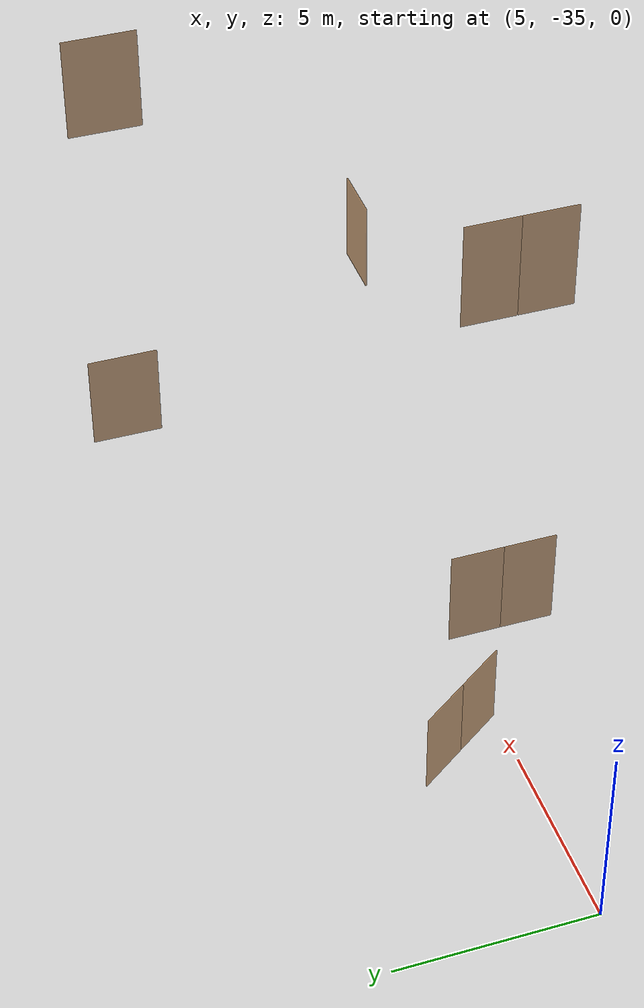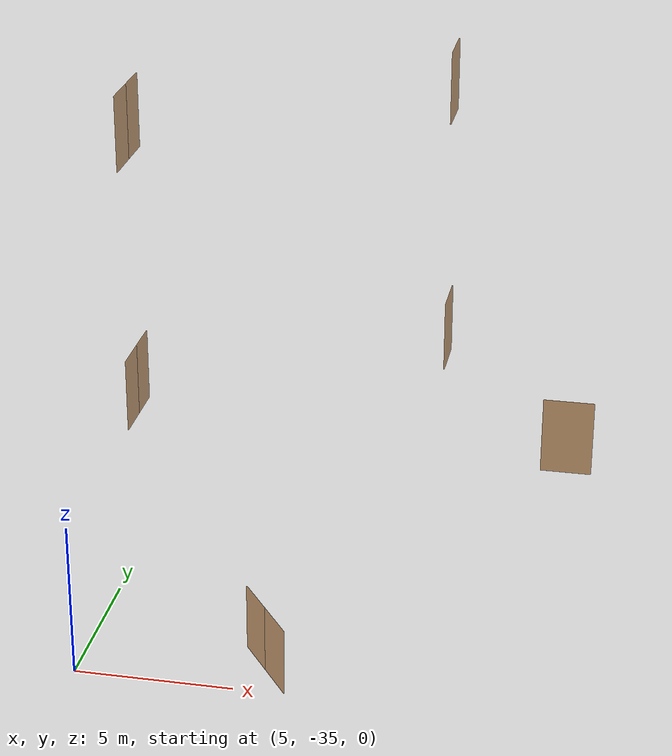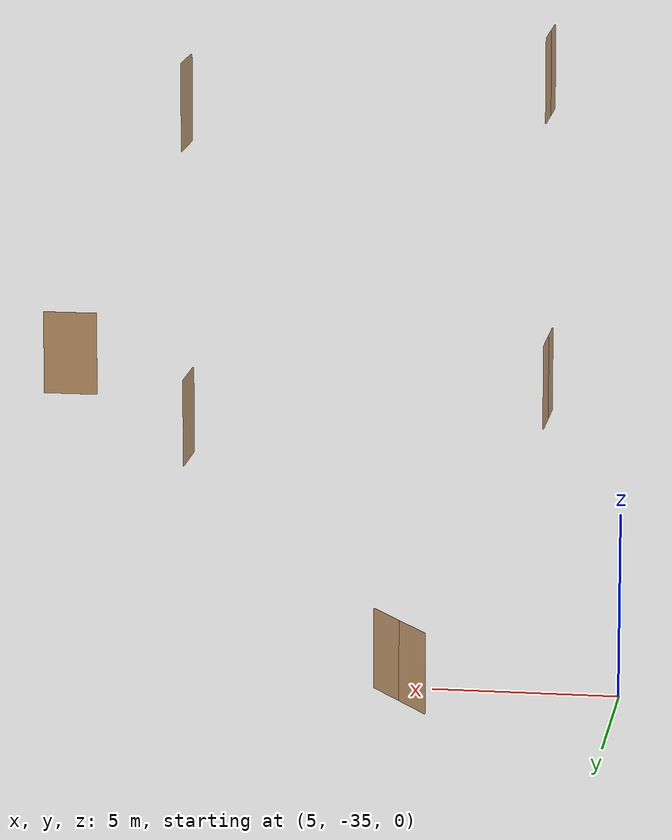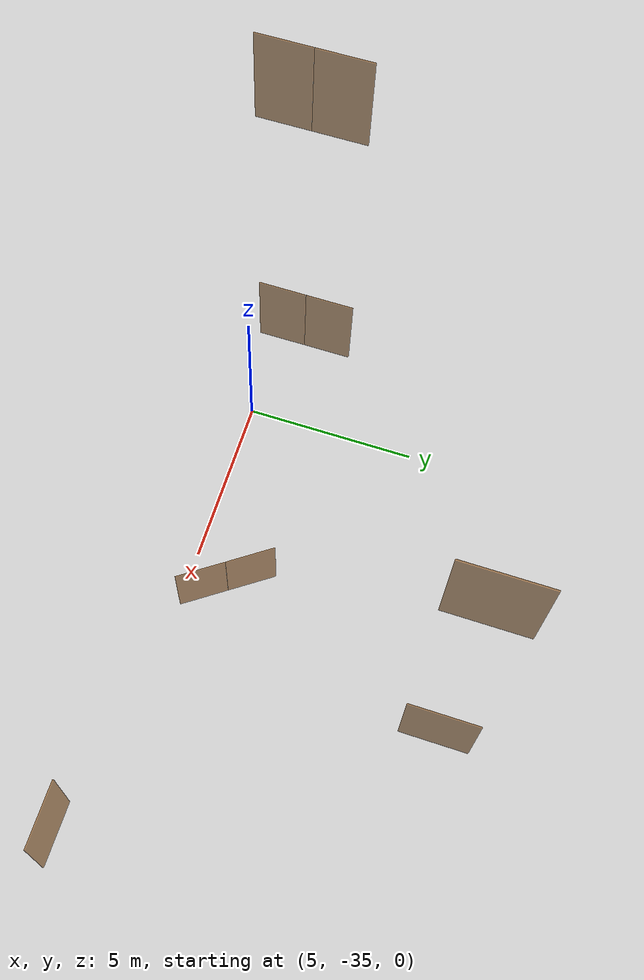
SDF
<sdf version="1.7">
 <world name="sim_world">
  <model name="L1_door1">
   <pose>10.753654762321071 -33.79999264551465 0.0 0 0 2.1904910296829736</pose>
   <link name="right">
    <pose>0.7204413525969184 0 1.11 0 0 0</pose>
    <visual name="right_visual">
     <geometry><box><size>1.4308827051938369 0.03 2.2</size></box></geometry>
     <material>
      <ambient>0.5 0.25 0 0.6</ambient>
      <diffuse>0.5 0.25 0 0.6</diffuse>
      <pbr><metal><metalness>0.0</metalness></metal></pbr>
     </material>
    </visual>
    <collision name="right_collision">
     <geometry><box><size>1.4308827051938369 0.03 2.2</size></box></geometry>
     <surface><contact><collide_bitmask>0x02</collide_bitmask></contact></surface>
    </collision>
    <inertial>
     <mass>50.0</mass>
     <inertia><ixx>20.17041666666667</ixx><iyy>28.69760548342847</iyy><izz>8.534688816761804</izz></inertia>
    </inertial>
   </link>
   <joint name="right_joint" type="revolute">
    <parent>world</parent>
    <child>right</child>
    <axis><xyz>0 0 1</xyz><limit><lower>0</lower><upper>1.57</upper></limit></axis>
    <pose>0.7204413525969184 0 0 0 0 0</pose>
   </joint>
   <link name="left">
    <pose>-0.7204413525969184 0 1.11 0 0 0</pose>
    <visual name="left_visual">
     <geometry><box><size>1.4308827051938369 0.03 2.2</size></box></geometry>
     <material>
      <ambient>0.5 0.25 0 0.6</ambient>
      <diffuse>0.5 0.25 0 0.6</diffuse>
      <pbr><metal><metalness>0.0</metalness></metal></pbr>
     </material>
    </visual>
    <collision name="left_collision">
     <geometry><box><size>1.4308827051938369 0.03 2.2</size></box></geometry>
     <surface><contact><collide_bitmask>0x02</collide_bitmask></contact></surface>
    </collision>
    <inertial>
     <mass>50.0</mass>
     <inertia><ixx>20.17041666666667</ixx><iyy>28.69760548342847</iyy><izz>8.534688816761804</izz></inertia>
    </inertial>
   </link>
   <joint name="left_joint" type="revolute">
    <parent>world</parent>
    <child>left</child>
    <axis><xyz>0 0 1</xyz><limit><lower>-1.57</lower><upper>0</upper></limit></axis>
    <pose>-0.7204413525969184 0 0 0 0 0</pose>
   </joint>
   <plugin name="register_component" filename="libregister_component.so">
    <component name="Door">
     <v_max_door>0.5</v_max_door>
     <a_max_door>0.3</a_max_door>
     <a_nom_door>0.15</a_nom_door>
     <dx_min_door>0.01</dx_min_door>
     <f_max_door>500.0</f_max_door>
     <ros_interface>true</ros_interface>
     <door name="L1_door1" type="DoubleSwingDoor" left_joint_name="left_joint" right_joint_name="right_joint"/>
    </component>
   </plugin>
  </model>
  <model name="L2_door2">
   <pose>6.76857286388343 -32.90682600516501 8.0 0 0 1.571612558028263</pose>
   <link name="right">
    <pose>0.5675078680191911 0 1.11 0 0 0</pose>
    <visual name="right_visual">
     <geometry><box><size>1.1250157360383821 0.03 2.2</size></box></geometry>
     <material>
      <ambient>0.5 0.25 0 0.6</ambient>
      <diffuse>0.5 0.25 0 0.6</diffuse>
      <pbr><metal><metalness>0.0</metalness></metal></pbr>
     </material>
    </visual>
    <collision name="right_collision">
     <geometry><box><size>1.1250157360383821 0.03 2.2</size></box></geometry>
     <surface><contact><collide_bitmask>0x02</collide_bitmask></contact></surface>
    </collision>
    <inertial>
     <mass>50.0</mass>
     <inertia><ixx>20.17041666666667</ixx><iyy>25.44025169305827</iyy><izz>5.277335026391595</izz></inertia>
    </inertial>
   </link>
   <joint name="right_joint" type="revolute">
    <parent>world</parent>
    <child>right</child>
    <axis><xyz>0 0 -1</xyz><limit><lower>0</lower><upper>1.57</upper></limit></axis>
    <pose>0.5675078680191911 0 0 0 0 0</pose>
   </joint>
   <link name="left">
    <pose>-0.5675078680191911 0 1.11 0 0 0</pose>
    <visual name="left_visual">
     <geometry><box><size>1.1250157360383821 0.03 2.2</size></box></geometry>
     <material>
      <ambient>0.5 0.25 0 0.6</ambient>
      <diffuse>0.5 0.25 0 0.6</diffuse>
      <pbr><metal><metalness>0.0</metalness></metal></pbr>
     </material>
    </visual>
    <collision name="left_collision">
     <geometry><box><size>1.1250157360383821 0.03 2.2</size></box></geometry>
     <surface><contact><collide_bitmask>0x02</collide_bitmask></contact></surface>
    </collision>
    <inertial>
     <mass>50.0</mass>
     <inertia><ixx>20.17041666666667</ixx><iyy>25.44025169305827</iyy><izz>5.277335026391595</izz></inertia>
    </inertial>
   </link>
   <joint name="left_joint" type="revolute">
    <parent>world</parent>
    <child>left</child>
    <axis><xyz>0 0 -1</xyz><limit><lower>-1.57</lower><upper>0</upper></limit></axis>
    <pose>-0.5675078680191911 0 0 0 0 0</pose>
   </joint>
   <plugin name="register_component" filename="libregister_component.so">
    <component name="Door">
     <v_max_door>0.5</v_max_door>
     <a_max_door>0.3</a_max_door>
     <a_nom_door>0.15</a_nom_door>
     <dx_min_door>0.01</dx_min_door>
     <f_max_door>500.0</f_max_door>
     <ros_interface>true</ros_interface>
     <door name="L2_door2" type="DoubleSwingDoor" left_joint_name="left_joint" right_joint_name="right_joint"/>
    </component>
   </plugin>
  </model>
  <model name="L2_door5">
   <pose>19.62055855578882 -34.21478433126707 8.0 0 0 3.1365461417546308</pose>
   <link name="right">
    <pose>0 0 1.11 0 0 0</pose>
    <visual name="right_visual">
     <geometry><box><size>1.4278667928054123 0.03 2.2</size></box></geometry>
     <material>
      <ambient>0.5 0.25 0 0.6</ambient>
      <diffuse>0.5 0.25 0 0.6</diffuse>
      <pbr><metal><metalness>0.0</metalness></metal></pbr>
     </material>
    </visual>
    <collision name="right_collision">
     <geometry><box><size>1.4278667928054123 0.03 2.2</size></box></geometry>
     <surface><contact><collide_bitmask>0x02</collide_bitmask></contact></surface>
    </collision>
    <inertial>
     <mass>50.0</mass>
     <inertia><ixx>20.17041666666667</ixx><iyy>28.661681574985064</iyy><izz>8.498764908318392</izz></inertia>
    </inertial>
   </link>
   <joint name="right_joint" type="revolute">
    <parent>world</parent>
    <child>right</child>
    <axis><xyz>0 0 -1</xyz><limit><lower>0</lower><upper>1.57</upper></limit></axis>
    <pose>0.7189333964027061 0 0 0 0 0</pose>
   </joint>
   <plugin name="register_component" filename="libregister_component.so">
    <component name="Door">
     <v_max_door>0.5</v_max_door>
     <a_max_door>0.3</a_max_door>
     <a_nom_door>0.15</a_nom_door>
     <dx_min_door>0.01</dx_min_door>
     <f_max_door>500.0</f_max_door>
     <ros_interface>true</ros_interface>
     <door name="L2_door5" type="SwingDoor" left_joint_name="empty_joint" right_joint_name="right_joint"/>
    </component>
   </plugin>
  </model>
  <model name="L2_door12">
   <pose>15.28470442617677 -27.2761317707633 8.0 0 0 1.571612558028262</pose>
   <link name="right">
    <pose>0 0 1.11 0 0 0</pose>
    <visual name="right_visual">
     <geometry><box><size>1.5658659299508506 0.03 2.2</size></box></geometry>
     <material>
      <ambient>0.5 0.25 0 0.6</ambient>
      <diffuse>0.5 0.25 0 0.6</diffuse>
      <pbr><metal><metalness>0.0</metalness></metal></pbr>
     </material>
    </visual>
    <collision name="right_collision">
     <geometry><box><size>1.5658659299508506 0.03 2.2</size></box></geometry>
     <surface><contact><collide_bitmask>0x02</collide_bitmask></contact></surface>
    </collision>
    <inertial>
     <mass>50.0</mass>
     <inertia><ixx>20.17041666666667</ixx><iyy>30.38306712742018</iyy><izz>10.22015046075351</izz></inertia>
    </inertial>
   </link>
   <joint name="right_joint" type="revolute">
    <parent>world</parent>
    <child>right</child>
    <axis><xyz>0 0 1</xyz><limit><lower>0</lower><upper>1.57</upper></limit></axis>
    <pose>0.7879329649754253 0 0 0 0 0</pose>
   </joint>
   <plugin name="register_component" filename="libregister_component.so">
    <component name="Door">
     <v_max_door>0.5</v_max_door>
     <a_max_door>0.3</a_max_door>
     <a_nom_door>0.15</a_nom_door>
     <dx_min_door>0.01</dx_min_door>
     <f_max_door>500.0</f_max_door>
     <ros_interface>true</ros_interface>
     <door name="L2_door12" type="SwingDoor" left_joint_name="empty_joint" right_joint_name="right_joint"/>
    </component>
   </plugin>
  </model>
  <model name="L3_door2">
   <pose>6.76857286388343 -32.90682600516501 16.0 0 0 1.571612558028263</pose>
   <link name="right">
    <pose>0.5675078680191911 0 1.11 0 0 0</pose>
    <visual name="right_visual">
     <geometry><box><size>1.1250157360383821 0.03 2.2</size></box></geometry>
     <material>
      <ambient>0.5 0.25 0 0.6</ambient>
      <diffuse>0.5 0.25 0 0.6</diffuse>
      <pbr><metal><metalness>0.0</metalness></metal></pbr>
     </material>
    </visual>
    <collision name="right_collision">
     <geometry><box><size>1.1250157360383821 0.03 2.2</size></box></geometry>
     <surface><contact><collide_bitmask>0x02</collide_bitmask></contact></surface>
    </collision>
    <inertial>
     <mass>50.0</mass>
     <inertia><ixx>20.17041666666667</ixx><iyy>25.44025169305827</iyy><izz>5.277335026391595</izz></inertia>
    </inertial>
   </link>
   <joint name="right_joint" type="revolute">
    <parent>world</parent>
    <child>right</child>
    <axis><xyz>0 0 -1</xyz><limit><lower>0</lower><upper>1.57</upper></limit></axis>
    <pose>0.5675078680191911 0 0 0 0 0</pose>
   </joint>
   <link name="left">
    <pose>-0.5675078680191911 0 1.11 0 0 0</pose>
    <visual name="left_visual">
     <geometry><box><size>1.1250157360383821 0.03 2.2</size></box></geometry>
     <material>
      <ambient>0.5 0.25 0 0.6</ambient>
      <diffuse>0.5 0.25 0 0.6</diffuse>
      <pbr><metal><metalness>0.0</metalness></metal></pbr>
     </material>
    </visual>
    <collision name="left_collision">
     <geometry><box><size>1.1250157360383821 0.03 2.2</size></box></geometry>
     <surface><contact><collide_bitmask>0x02</collide_bitmask></contact></surface>
    </collision>
    <inertial>
     <mass>50.0</mass>
     <inertia><ixx>20.17041666666667</ixx><iyy>25.44025169305827</iyy><izz>5.277335026391595</izz></inertia>
    </inertial>
   </link>
   <joint name="left_joint" type="revolute">
    <parent>world</parent>
    <child>left</child>
    <axis><xyz>0 0 -1</xyz><limit><lower>-1.57</lower><upper>0</upper></limit></axis>
    <pose>-0.5675078680191911 0 0 0 0 0</pose>
   </joint>
   <plugin name="register_component" filename="libregister_component.so">
    <component name="Door">
     <v_max_door>0.5</v_max_door>
     <a_max_door>0.3</a_max_door>
     <a_nom_door>0.15</a_nom_door>
     <dx_min_door>0.01</dx_min_door>
     <f_max_door>500.0</f_max_door>
     <ros_interface>true</ros_interface>
     <door name="L3_door2" type="DoubleSwingDoor" left_joint_name="left_joint" right_joint_name="right_joint"/>
    </component>
   </plugin>
  </model>
  <model name="L3_door12">
   <pose>15.28470442617677 -27.2761317707633 16.0 0 0 1.571612558028262</pose>
   <link name="right">
    <pose>0 0 1.11 0 0 0</pose>
    <visual name="right_visual">
     <geometry><box><size>1.5658659299508506 0.03 2.2</size></box></geometry>
     <material>
      <ambient>0.5 0.25 0 0.6</ambient>
      <diffuse>0.5 0.25 0 0.6</diffuse>
      <pbr><metal><metalness>0.0</metalness></metal></pbr>
     </material>
    </visual>
    <collision name="right_collision">
     <geometry><box><size>1.5658659299508506 0.03 2.2</size></box></geometry>
     <surface><contact><collide_bitmask>0x02</collide_bitmask></contact></surface>
    </collision>
    <inertial>
     <mass>50.0</mass>
     <inertia><ixx>20.17041666666667</ixx><iyy>30.38306712742018</iyy><izz>10.22015046075351</izz></inertia>
    </inertial>
   </link>
   <joint name="right_joint" type="revolute">
    <parent>world</parent>
    <child>right</child>
    <axis><xyz>0 0 1</xyz><limit><lower>0</lower><upper>1.57</upper></limit></axis>
    <pose>0.7879329649754253 0 0 0 0 0</pose>
   </joint>
   <plugin name="register_component" filename="libregister_component.so">
    <component name="Door">
     <v_max_door>0.5</v_max_door>
     <a_max_door>0.3</a_max_door>
     <a_nom_door>0.15</a_nom_door>
     <dx_min_door>0.01</dx_min_door>
     <f_max_door>500.0</f_max_door>
     <ros_interface>true</ros_interface>
     <door name="L3_door12" type="SwingDoor" left_joint_name="empty_joint" right_joint_name="right_joint"/>
    </component>
   </plugin>
  </model>
 </world>
</sdf>
